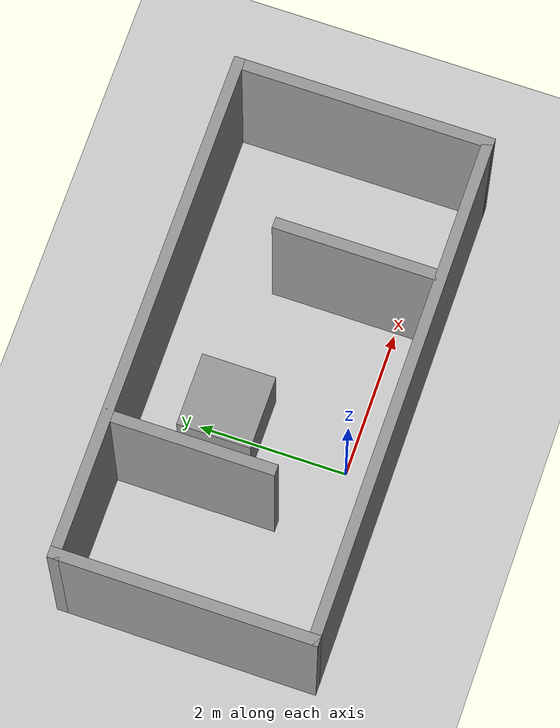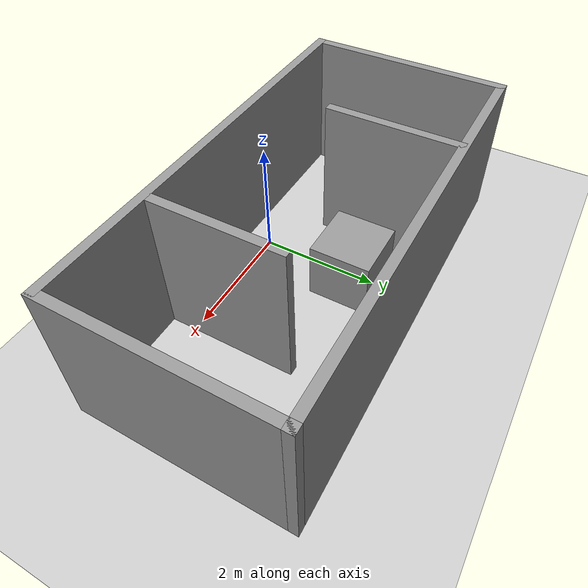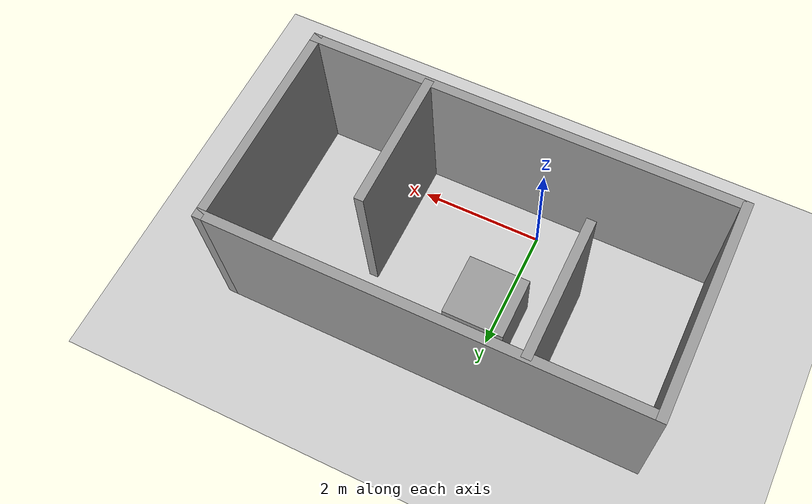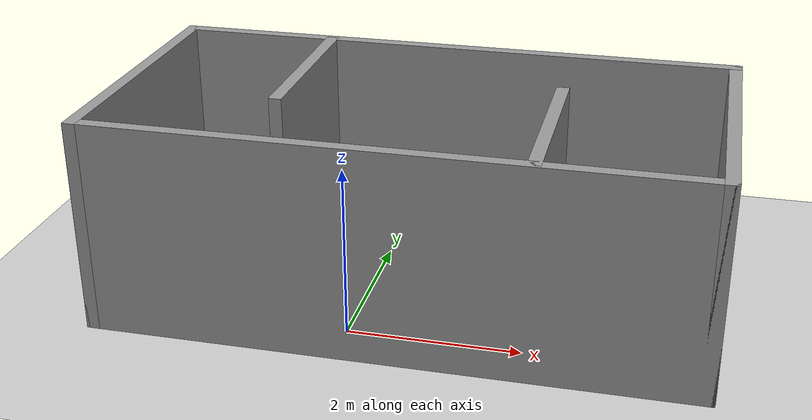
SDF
<sdf version="1.7">
 <world name="default">
  <light name="sun" type="directional">
   <pose>0 0 10 0 -0 0</pose>
   <diffuse>0.8 0.8 0.8 1</diffuse>
   <specular>0.2 0.2 0.2 1</specular>
   <attenuation>
    <range>1000</range>
    <constant>0.9</constant>
    <linear>0.01</linear>
    <quadratic>0.001</quadratic>
   </attenuation>
   <direction>-0.5 0.1 -0.9</direction>
   <spot><inner_angle>0</inner_angle><outer_angle>0</outer_angle><falloff>0</falloff></spot>
  </light>
  <model name="ground_plane">
   <static>1</static>
   <link name="link">
    <collision name="collision">
     <geometry><plane><normal>0 0 1</normal><size>100 100</size></plane></geometry>
     <surface>
      <contact><collide_bitmask>65535</collide_bitmask></contact>
      <friction><ode><mu>100</mu><mu2>50</mu2></ode></friction>
     </surface>
    </collision>
    <visual name="visual">
     <cast_shadows>0</cast_shadows>
     <geometry><plane><normal>0 0 1</normal><size>100 100</size></plane></geometry>
     <material>
      <script><uri>file://media/materials/scripts/gazebo.material</uri><name>Gazebo/Grey</name></script>
     </material>
    </visual>
   </link>
  </model>
  <gravity>0 0 -9.8</gravity>
  <magnetic_field>6e-06 2.3e-05 -4.2e-05</magnetic_field>
  <atmosphere type="adiabatic"/>
  <physics type="ode">
   <max_step_size>0.001</max_step_size>
   <real_time_factor>1</real_time_factor>
   <real_time_update_rate>1000</real_time_update_rate>
  </physics>
  <scene><ambient>0.4 0.4 0.4 1</ambient><background>0.7 0.7 0.7 1</background><shadows>1</shadows></scene>
  <audio><device>default</device></audio>
  <spherical_coordinates>
   <surface_model>EARTH_WGS84</surface_model>
   <latitude_deg>0</latitude_deg>
   <longitude_deg>0</longitude_deg>
   <elevation>0</elevation>
   <heading_deg>0</heading_deg>
  </spherical_coordinates>
  <model name="room">
   <pose>0.595609 1.49544 0 0 -0 0</pose>
   <link name="Wall_0">
    <collision name="Wall_0_Collision">
     <geometry><box><size>3.5 0.15 2.5</size></box></geometry>
     <pose>0 0 1.25 0 -0 0</pose>
    </collision>
    <visual name="Wall_0_Visual">
     <pose>0 0 1.25 0 -0 0</pose>
     <geometry><box><size>3.5 0.15 2.5</size></box></geometry>
     <material>
      <script><uri>file://media/materials/scripts/gazebo.material</uri><name>Gazebo/Grey</name></script>
      <ambient>1 1 1 1</ambient>
     </material>
     <meta><layer>0</layer></meta>
    </visual>
    <pose>-3.425 -0.3225 0 0 -0 -1.5708</pose>
   </link>
   <link name="Wall_1">
    <collision name="Wall_1_Collision">
     <geometry><box><size>7 0.15 2.5</size></box></geometry>
     <pose>0 0 1.25 0 -0 0</pose>
    </collision>
    <visual name="Wall_1_Visual">
     <pose>0 0 1.25 0 -0 0</pose>
     <geometry><box><size>7 0.15 2.5</size></box></geometry>
     <material>
      <script><uri>file://media/materials/scripts/gazebo.material</uri><name>Gazebo/Grey</name></script>
      <ambient>1 1 1 1</ambient>
     </material>
     <meta><layer>0</layer></meta>
    </visual>
    <pose>-0 -1.9975 0 0 -0 0</pose>
   </link>
   <link name="Wall_2">
    <collision name="Wall_2_Collision">
     <geometry><box><size>3.5 0.15 2.5</size></box></geometry>
     <pose>0 0 1.25 0 -0 0</pose>
    </collision>
    <visual name="Wall_2_Visual">
     <pose>0 0 1.25 0 -0 0</pose>
     <geometry><box><size>3.5 0.15 2.5</size></box></geometry>
     <material>
      <script><uri>file://media/materials/scripts/gazebo.material</uri><name>Gazebo/Grey</name></script>
      <ambient>1 1 1 1</ambient>
     </material>
     <meta><layer>0</layer></meta>
    </visual>
    <pose>3.425 -0.3225 0 0 -0 1.5708</pose>
   </link>
   <link name="Wall_3">
    <collision name="Wall_3_Collision">
     <geometry><box><size>7 0.15 2.5</size></box></geometry>
     <pose>0 0 1.25 0 -0 0</pose>
    </collision>
    <visual name="Wall_3_Visual">
     <pose>0 0 1.25 0 -0 0</pose>
     <geometry><box><size>7 0.15 2.5</size></box></geometry>
     <material>
      <script><uri>file://media/materials/scripts/gazebo.material</uri><name>Gazebo/Grey</name></script>
      <ambient>1 1 1 1</ambient>
     </material>
     <meta><layer>0</layer></meta>
    </visual>
    <pose>-0 1.3525 0 0 -0 3.14159</pose>
   </link>
   <link name="Wall_5">
    <collision name="Wall_5_Collision">
     <geometry><box><size>2.25 0.15 2.5</size></box></geometry>
     <pose>0 0 1.25 0 -0 0</pose>
    </collision>
    <visual name="Wall_5_Visual">
     <pose>0 0 1.25 0 -0 0</pose>
     <geometry><box><size>2.25 0.15 2.5</size></box></geometry>
     <material>
      <script><uri>file://media/materials/scripts/gazebo.material</uri><name>Gazebo/Grey</name></script>
      <ambient>1 1 1 1</ambient>
     </material>
     <meta><layer>0</layer></meta>
    </visual>
    <pose>-1.545 0.2525 0 0 -0 -1.5708</pose>
   </link>
   <link name="Wall_7">
    <collision name="Wall_7_Collision">
     <geometry><box><size>2.25 0.15 2.5</size></box></geometry>
     <pose>0 0 1.25 0 -0 0</pose>
    </collision>
    <visual name="Wall_7_Visual">
     <pose>0 0 1.25 0 -0 0</pose>
     <geometry><box><size>2.25 0.15 2.5</size></box></geometry>
     <material>
      <script><uri>file://media/materials/scripts/gazebo.material</uri><name>Gazebo/Grey</name></script>
      <ambient>1 1 1 1</ambient>
     </material>
     <meta><layer>0</layer></meta>
    </visual>
    <pose>1.525 -0.9075 0 0 -0 1.5708</pose>
   </link>
   <static>1</static>
  </model>
  <model name="unit_box">
   <pose>0.150442 1.67856 0.499995 1e-05 -0 0</pose>
   <link name="link">
    <inertial>
     <mass>1</mass>
     <inertia>
      <ixx>0.166667</ixx>
      <ixy>0</ixy>
      <ixz>0</ixz>
      <iyy>0.166667</iyy>
      <iyz>0</iyz>
      <izz>0.166667</izz>
     </inertia>
    </inertial>
    <collision name="collision"><geometry><box><size>1 1 1</size></box></geometry></collision>
    <visual name="visual">
     <geometry><box><size>1 1 1</size></box></geometry>
     <material>
      <script><name>Gazebo/Grey</name><uri>file://media/materials/scripts/gazebo.material</uri></script>
     </material>
    </visual>
   </link>
  </model>
 </world>
</sdf>
